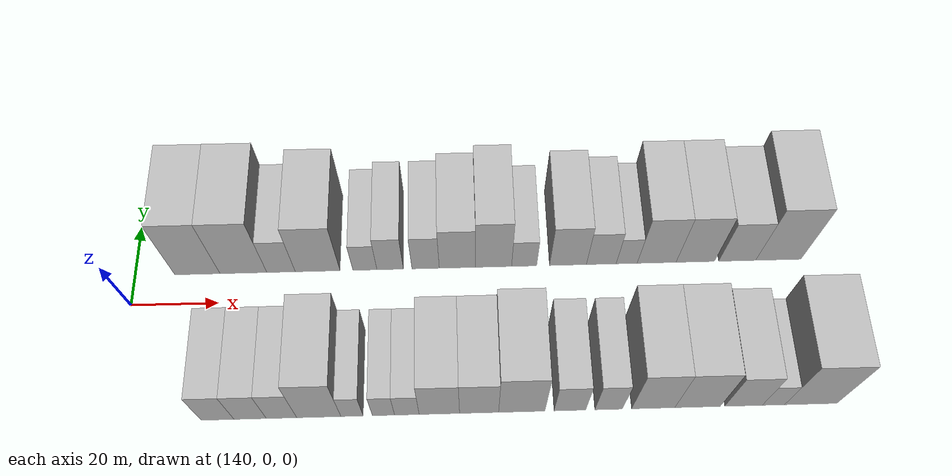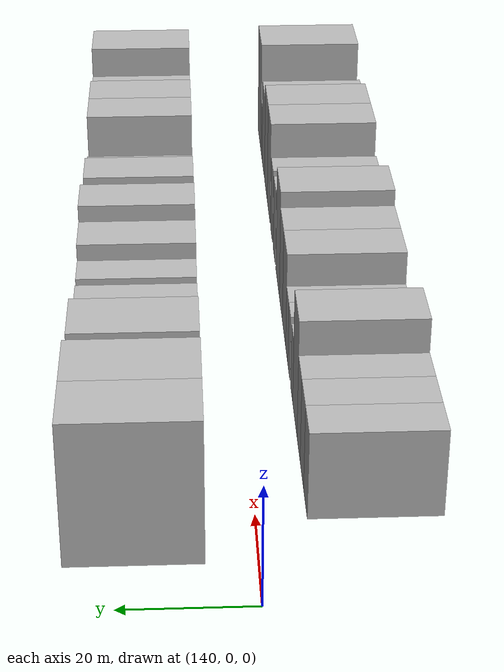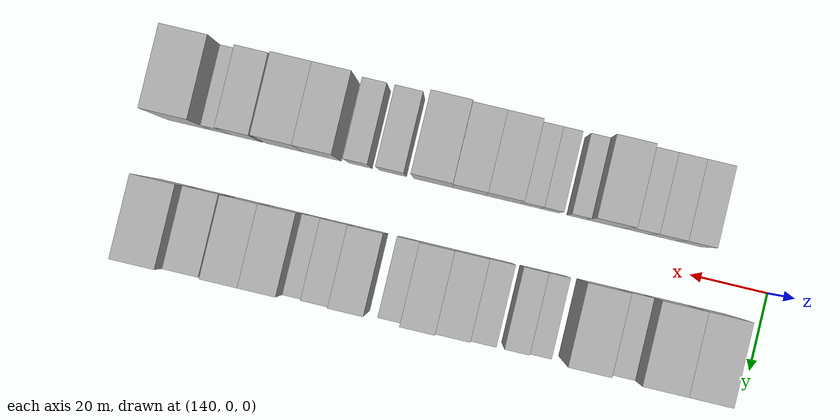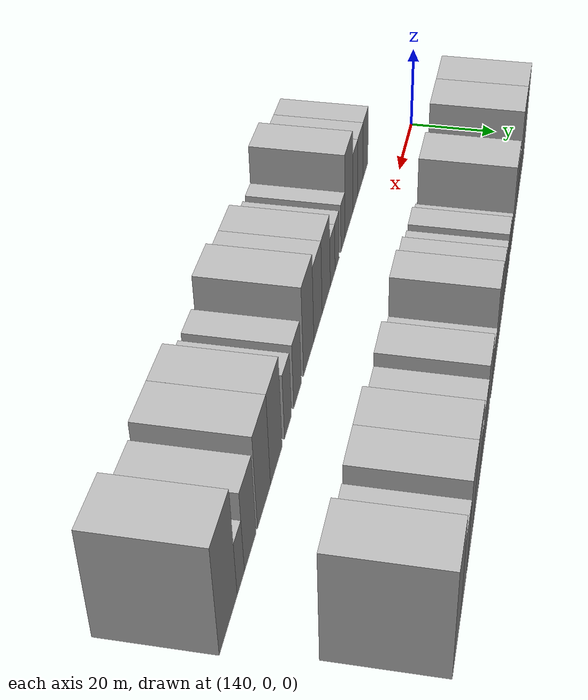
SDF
<sdf version="1.6">
 <world name="default">
  <model name="building_15">
   <static>1</static>
   <pose>154.4474 17.5000 0 0.000000 0.000000 1.570796</pose>
   <link name="link">
    <pose>0 0 12.00 0 0 0</pose>
    <collision name="collision"><geometry><box><size>20.0000 10.4894 24.0000</size></box></geometry></collision>
    <visual name="visual">
     <cast_shadows>0</cast_shadows>
     <geometry><box><size>20.0000 10.4894 24.0000</size></box></geometry>
     <material>
      <script>
       <uri>model://HANNAS_wall/materials/scripts</uri>
       <uri>model://HANNAS_wall/materials/textures</uri>
       <name>vrc/HANNAS_wall</name>
      </script>
     </material>
    </visual>
   </link>
  </model>
  <model name="building_16">
   <static>1</static>
   <pose>165.1244 17.5000 0 0.000000 0.000000 1.570796</pose>
   <link name="link">
    <pose>0 0 12.00 0 0 0</pose>
    <collision name="collision"><geometry><box><size>20.0000 10.8648 24.0000</size></box></geometry></collision>
    <visual name="visual">
     <cast_shadows>0</cast_shadows>
     <geometry><box><size>20.0000 10.8648 24.0000</size></box></geometry>
     <material>
      <script>
       <uri>model://HANNAS_wall/materials/scripts</uri>
       <uri>model://HANNAS_wall/materials/textures</uri>
       <name>vrc/HANNAS_wall</name>
      </script>
     </material>
    </visual>
   </link>
  </model>
  <model name="building_17">
   <static>1</static>
   <pose>173.8574 17.5000 0 0.000000 0.000000 1.570796</pose>
   <link name="link">
    <pose>0 0 7.50 0 0 0</pose>
    <collision name="collision"><geometry><box><size>20.0000 6.6013 15.0000</size></box></geometry></collision>
    <visual name="visual">
     <cast_shadows>0</cast_shadows>
     <geometry><box><size>20.0000 6.6013 15.0000</size></box></geometry>
     <material>
      <script>
       <uri>model://HANNAS_wall/materials/scripts</uri>
       <uri>model://HANNAS_wall/materials/textures</uri>
       <name>vrc/HANNAS_wall</name>
      </script>
     </material>
    </visual>
   </link>
  </model>
  <model name="building_18">
   <static>1</static>
   <pose>182.3586 17.5000 0 0.000000 0.000000 1.570796</pose>
   <link name="link">
    <pose>0 0 10.50 0 0 0</pose>
    <collision name="collision"><geometry><box><size>20.0000 10.4010 21.0000</size></box></geometry></collision>
    <visual name="visual">
     <cast_shadows>0</cast_shadows>
     <geometry><box><size>20.0000 10.4010 21.0000</size></box></geometry>
     <material>
      <script>
       <uri>model://HANNAS_wall/materials/scripts</uri>
       <uri>model://HANNAS_wall/materials/textures</uri>
       <name>vrc/HANNAS_wall</name>
      </script>
     </material>
    </visual>
   </link>
  </model>
  <model name="building_19">
   <static>1</static>
   <pose>193.3541 17.5000 0 0.000000 0.000000 1.570796</pose>
   <link name="link">
    <pose>0 0 6.00 0 0 0</pose>
    <collision name="collision"><geometry><box><size>20.0000 5.5900 12.0000</size></box></geometry></collision>
    <visual name="visual">
     <cast_shadows>0</cast_shadows>
     <geometry><box><size>20.0000 5.5900 12.0000</size></box></geometry>
     <material>
      <script>
       <uri>model://HANNAS_wall/materials/scripts</uri>
       <uri>model://HANNAS_wall/materials/textures</uri>
       <name>vrc/HANNAS_wall</name>
      </script>
     </material>
    </visual>
   </link>
  </model>
  <model name="building_20">
   <static>1</static>
   <pose>199.2261 17.5000 0 0.000000 0.000000 1.570796</pose>
   <link name="link">
    <pose>0 0 7.50 0 0 0</pose>
    <collision name="collision"><geometry><box><size>20.0000 6.1541 15.0000</size></box></geometry></collision>
    <visual name="visual">
     <cast_shadows>0</cast_shadows>
     <geometry><box><size>20.0000 6.1541 15.0000</size></box></geometry>
     <material>
      <script>
       <uri>model://HANNAS_wall/materials/scripts</uri>
       <uri>model://HANNAS_wall/materials/textures</uri>
       <name>vrc/HANNAS_wall</name>
      </script>
     </material>
    </visual>
   </link>
  </model>
  <model name="building_21">
   <static>1</static>
   <pose>207.4873 17.5000 0 0.000000 0.000000 1.570796</pose>
   <link name="link">
    <pose>0 0 7.50 0 0 0</pose>
    <collision name="collision"><geometry><box><size>20.0000 6.3683 15.0000</size></box></geometry></collision>
    <visual name="visual">
     <cast_shadows>0</cast_shadows>
     <geometry><box><size>20.0000 6.3683 15.0000</size></box></geometry>
     <material>
      <script>
       <uri>model://HANNAS_wall/materials/scripts</uri>
       <uri>model://HANNAS_wall/materials/textures</uri>
       <name>vrc/HANNAS_wall</name>
      </script>
     </material>
    </visual>
   </link>
  </model>
  <model name="building_22">
   <static>1</static>
   <pose>214.8845 17.5000 0 0.000000 0.000000 1.570796</pose>
   <link name="link">
    <pose>0 0 9.00 0 0 0</pose>
    <collision name="collision"><geometry><box><size>20.0000 8.4260 18.0000</size></box></geometry></collision>
    <visual name="visual">
     <cast_shadows>0</cast_shadows>
     <geometry><box><size>20.0000 8.4260 18.0000</size></box></geometry>
     <material>
      <script>
       <uri>model://HANNAS_wall/materials/scripts</uri>
       <uri>model://HANNAS_wall/materials/textures</uri>
       <name>vrc/HANNAS_wall</name>
      </script>
     </material>
    </visual>
   </link>
  </model>
  <model name="building_23">
   <static>1</static>
   <pose>223.3157 17.5000 0 0.000000 0.000000 1.570796</pose>
   <link name="link">
    <pose>0 0 10.50 0 0 0</pose>
    <collision name="collision"><geometry><box><size>20.0000 8.4365 21.0000</size></box></geometry></collision>
    <visual name="visual">
     <cast_shadows>0</cast_shadows>
     <geometry><box><size>20.0000 8.4365 21.0000</size></box></geometry>
     <material>
      <script>
       <uri>model://HANNAS_wall/materials/scripts</uri>
       <uri>model://HANNAS_wall/materials/textures</uri>
       <name>vrc/HANNAS_wall</name>
      </script>
     </material>
    </visual>
   </link>
  </model>
  <model name="building_24">
   <static>1</static>
   <pose>230.4687 17.5000 0 0.000000 0.000000 1.570796</pose>
   <link name="link">
    <pose>0 0 6.00 0 0 0</pose>
    <collision name="collision"><geometry><box><size>20.0000 5.8695 12.0000</size></box></geometry></collision>
    <visual name="visual">
     <cast_shadows>0</cast_shadows>
     <geometry><box><size>20.0000 5.8695 12.0000</size></box></geometry>
     <material>
      <script>
       <uri>model://HANNAS_wall/materials/scripts</uri>
       <uri>model://HANNAS_wall/materials/textures</uri>
       <name>vrc/HANNAS_wall</name>
      </script>
     </material>
    </visual>
   </link>
  </model>
  <model name="building_25">
   <static>1</static>
   <pose>240.7069 17.5000 0 0.000000 0.000000 1.570796</pose>
   <link name="link">
    <pose>0 0 9.00 0 0 0</pose>
    <collision name="collision"><geometry><box><size>20.0000 8.6068 18.0000</size></box></geometry></collision>
    <visual name="visual">
     <cast_shadows>0</cast_shadows>
     <geometry><box><size>20.0000 8.6068 18.0000</size></box></geometry>
     <material>
      <script>
       <uri>model://HANNAS_wall/materials/scripts</uri>
       <uri>model://HANNAS_wall/materials/textures</uri>
       <name>vrc/HANNAS_wall</name>
      </script>
     </material>
    </visual>
   </link>
  </model>
  <model name="building_26">
   <static>1</static>
   <pose>248.5009 17.5000 0 0.000000 0.000000 1.570796</pose>
   <link name="link">
    <pose>0 0 7.50 0 0 0</pose>
    <collision name="collision"><geometry><box><size>20.0000 6.9813 15.0000</size></box></geometry></collision>
    <visual name="visual">
     <cast_shadows>0</cast_shadows>
     <geometry><box><size>20.0000 6.9813 15.0000</size></box></geometry>
     <material>
      <script>
       <uri>model://HANNAS_wall/materials/scripts</uri>
       <uri>model://HANNAS_wall/materials/textures</uri>
       <name>vrc/HANNAS_wall</name>
      </script>
     </material>
    </visual>
   </link>
  </model>
  <model name="building_27">
   <static>1</static>
   <pose>254.4521 17.5000 0 0.000000 0.000000 1.570796</pose>
   <link name="link">
    <pose>0 0 6.00 0 0 0</pose>
    <collision name="collision"><geometry><box><size>20.0000 4.9211 12.0000</size></box></geometry></collision>
    <visual name="visual">
     <cast_shadows>0</cast_shadows>
     <geometry><box><size>20.0000 4.9211 12.0000</size></box></geometry>
     <material>
      <script>
       <uri>model://HANNAS_wall/materials/scripts</uri>
       <uri>model://HANNAS_wall/materials/textures</uri>
       <name>vrc/HANNAS_wall</name>
      </script>
     </material>
    </visual>
   </link>
  </model>
  <model name="building_28">
   <static>1</static>
   <pose>261.4727 17.5000 0 0.000000 0.000000 1.570796</pose>
   <link name="link">
    <pose>0 0 10.50 0 0 0</pose>
    <collision name="collision"><geometry><box><size>20.0000 9.1201 21.0000</size></box></geometry></collision>
    <visual name="visual">
     <cast_shadows>0</cast_shadows>
     <geometry><box><size>20.0000 9.1201 21.0000</size></box></geometry>
     <material>
      <script>
       <uri>model://HANNAS_wall/materials/scripts</uri>
       <uri>model://HANNAS_wall/materials/textures</uri>
       <name>vrc/HANNAS_wall</name>
      </script>
     </material>
    </visual>
   </link>
  </model>
  <model name="building_29">
   <static>1</static>
   <pose>270.5441 17.5000 0 0.000000 0.000000 1.570796</pose>
   <link name="link">
    <pose>0 0 10.50 0 0 0</pose>
    <collision name="collision"><geometry><box><size>20.0000 9.0228 21.0000</size></box></geometry></collision>
    <visual name="visual">
     <cast_shadows>0</cast_shadows>
     <geometry><box><size>20.0000 9.0228 21.0000</size></box></geometry>
     <material>
      <script>
       <uri>model://HANNAS_wall/materials/scripts</uri>
       <uri>model://HANNAS_wall/materials/textures</uri>
       <name>vrc/HANNAS_wall</name>
      </script>
     </material>
    </visual>
   </link>
  </model>
  <model name="building_30">
   <static>1</static>
   <pose>280.3954 17.5000 0 0.000000 0.000000 1.570796</pose>
   <link name="link">
    <pose>0 0 9.00 0 0 0</pose>
    <collision name="collision"><geometry><box><size>20.0000 8.6798 18.0000</size></box></geometry></collision>
    <visual name="visual">
     <cast_shadows>0</cast_shadows>
     <geometry><box><size>20.0000 8.6798 18.0000</size></box></geometry>
     <material>
      <script>
       <uri>model://HANNAS_wall/materials/scripts</uri>
       <uri>model://HANNAS_wall/materials/textures</uri>
       <name>vrc/HANNAS_wall</name>
      </script>
     </material>
    </visual>
   </link>
  </model>
  <model name="building_31">
   <static>1</static>
   <pose>290.0700 17.5000 0 0.000000 0.000000 1.570796</pose>
   <link name="link">
    <pose>0 0 12.00 0 0 0</pose>
    <collision name="collision"><geometry><box><size>20.0000 10.6693 24.0000</size></box></geometry></collision>
    <visual name="visual">
     <cast_shadows>0</cast_shadows>
     <geometry><box><size>20.0000 10.6693 24.0000</size></box></geometry>
     <material>
      <script>
       <uri>model://HANNAS_wall/materials/scripts</uri>
       <uri>model://HANNAS_wall/materials/textures</uri>
       <name>vrc/HANNAS_wall</name>
      </script>
     </material>
    </visual>
   </link>
  </model>
  <model name="building_50">
   <static>1</static>
   <pose>162.2317 -17.5000 0 0.000000 0.000000 1.570796</pose>
   <link name="link">
    <pose>0 0 7.50 0 0 0</pose>
    <collision name="collision"><geometry><box><size>20.0000 7.1058 15.0000</size></box></geometry></collision>
    <visual name="visual">
     <cast_shadows>0</cast_shadows>
     <geometry><box><size>20.0000 7.1058 15.0000</size></box></geometry>
     <material>
      <script>
       <uri>model://HANNAS_wall/materials/scripts</uri>
       <uri>model://HANNAS_wall/materials/textures</uri>
       <name>vrc/HANNAS_wall</name>
      </script>
     </material>
    </visual>
   </link>
  </model>
  <model name="building_51">
   <static>1</static>
   <pose>169.2778 -17.5000 0 0.000000 0.000000 1.570796</pose>
   <link name="link">
    <pose>0 0 7.50 0 0 0</pose>
    <collision name="collision"><geometry><box><size>20.0000 6.9863 15.0000</size></box></geometry></collision>
    <visual name="visual">
     <cast_shadows>0</cast_shadows>
     <geometry><box><size>20.0000 6.9863 15.0000</size></box></geometry>
     <material>
      <script>
       <uri>model://HANNAS_wall/materials/scripts</uri>
       <uri>model://HANNAS_wall/materials/textures</uri>
       <name>vrc/HANNAS_wall</name>
      </script>
     </material>
    </visual>
   </link>
  </model>
  <model name="building_52">
   <static>1</static>
   <pose>176.0618 -17.5000 0 0.000000 0.000000 1.570796</pose>
   <link name="link">
    <pose>0 0 7.50 0 0 0</pose>
    <collision name="collision"><geometry><box><size>20.0000 6.5817 15.0000</size></box></geometry></collision>
    <visual name="visual">
     <cast_shadows>0</cast_shadows>
     <geometry><box><size>20.0000 6.5817 15.0000</size></box></geometry>
     <material>
      <script>
       <uri>model://HANNAS_wall/materials/scripts</uri>
       <uri>model://HANNAS_wall/materials/textures</uri>
       <name>vrc/HANNAS_wall</name>
      </script>
     </material>
    </visual>
   </link>
  </model>
  <model name="building_53">
   <static>1</static>
   <pose>184.1366 -17.5000 0 0.000000 0.000000 1.570796</pose>
   <link name="link">
    <pose>0 0 10.50 0 0 0</pose>
    <collision name="collision"><geometry><box><size>20.0000 9.5681 21.0000</size></box></geometry></collision>
    <visual name="visual">
     <cast_shadows>0</cast_shadows>
     <geometry><box><size>20.0000 9.5681 21.0000</size></box></geometry>
     <material>
      <script>
       <uri>model://HANNAS_wall/materials/scripts</uri>
       <uri>model://HANNAS_wall/materials/textures</uri>
       <name>vrc/HANNAS_wall</name>
      </script>
     </material>
    </visual>
   </link>
  </model>
  <model name="building_54">
   <static>1</static>
   <pose>191.3354 -17.5000 0 0.000000 0.000000 1.570796</pose>
   <link name="link">
    <pose>0 0 6.00 0 0 0</pose>
    <collision name="collision"><geometry><box><size>20.0000 4.8296 12.0000</size></box></geometry></collision>
    <visual name="visual">
     <cast_shadows>0</cast_shadows>
     <geometry><box><size>20.0000 4.8296 12.0000</size></box></geometry>
     <material>
      <script>
       <uri>model://HANNAS_wall/materials/scripts</uri>
       <uri>model://HANNAS_wall/materials/textures</uri>
       <name>vrc/HANNAS_wall</name>
      </script>
     </material>
    </visual>
   </link>
  </model>
  <model name="building_55">
   <static>1</static>
   <pose>198.1550 -17.5000 0 0.000000 0.000000 1.570796</pose>
   <link name="link">
    <pose>0 0 6.00 0 0 0</pose>
    <collision name="collision"><geometry><box><size>20.0000 4.8096 12.0000</size></box></geometry></collision>
    <visual name="visual">
     <cast_shadows>0</cast_shadows>
     <geometry><box><size>20.0000 4.8096 12.0000</size></box></geometry>
     <material>
      <script>
       <uri>model://HANNAS_wall/materials/scripts</uri>
       <uri>model://HANNAS_wall/materials/textures</uri>
       <name>vrc/HANNAS_wall</name>
      </script>
     </material>
    </visual>
   </link>
  </model>
  <model name="building_56">
   <static>1</static>
   <pose>203.2255 -17.5000 0 0.000000 0.000000 1.570796</pose>
   <link name="link">
    <pose>0 0 6.00 0 0 0</pose>
    <collision name="collision"><geometry><box><size>20.0000 5.3314 12.0000</size></box></geometry></collision>
    <visual name="visual">
     <cast_shadows>0</cast_shadows>
     <geometry><box><size>20.0000 5.3314 12.0000</size></box></geometry>
     <material>
      <script>
       <uri>model://HANNAS_wall/materials/scripts</uri>
       <uri>model://HANNAS_wall/materials/textures</uri>
       <name>vrc/HANNAS_wall</name>
      </script>
     </material>
    </visual>
   </link>
  </model>
  <model name="building_57">
   <static>1</static>
   <pose>210.2782 -17.5000 0 0.000000 0.000000 1.570796</pose>
   <link name="link">
    <pose>0 0 9.00 0 0 0</pose>
    <collision name="collision"><geometry><box><size>20.0000 8.7739 18.0000</size></box></geometry></collision>
    <visual name="visual">
     <cast_shadows>0</cast_shadows>
     <geometry><box><size>20.0000 8.7739 18.0000</size></box></geometry>
     <material>
      <script>
       <uri>model://HANNAS_wall/materials/scripts</uri>
       <uri>model://HANNAS_wall/materials/textures</uri>
       <name>vrc/HANNAS_wall</name>
      </script>
     </material>
    </visual>
   </link>
  </model>
  <model name="building_58">
   <static>1</static>
   <pose>218.9096 -17.5000 0 0.000000 0.000000 1.570796</pose>
   <link name="link">
    <pose>0 0 9.00 0 0 0</pose>
    <collision name="collision"><geometry><box><size>20.0000 8.4890 18.0000</size></box></geometry></collision>
    <visual name="visual">
     <cast_shadows>0</cast_shadows>
     <geometry><box><size>20.0000 8.4890 18.0000</size></box></geometry>
     <material>
      <script>
       <uri>model://HANNAS_wall/materials/scripts</uri>
       <uri>model://HANNAS_wall/materials/textures</uri>
       <name>vrc/HANNAS_wall</name>
      </script>
     </material>
    </visual>
   </link>
  </model>
  <model name="building_59">
   <static>1</static>
   <pose>228.1940 -17.5000 0 0.000000 0.000000 1.570796</pose>
   <link name="link">
    <pose>0 0 10.50 0 0 0</pose>
    <collision name="collision"><geometry><box><size>20.0000 10.0798 21.0000</size></box></geometry></collision>
    <visual name="visual">
     <cast_shadows>0</cast_shadows>
     <geometry><box><size>20.0000 10.0798 21.0000</size></box></geometry>
     <material>
      <script>
       <uri>model://HANNAS_wall/materials/scripts</uri>
       <uri>model://HANNAS_wall/materials/textures</uri>
       <name>vrc/HANNAS_wall</name>
      </script>
     </material>
    </visual>
   </link>
  </model>
  <model name="building_60">
   <static>1</static>
   <pose>238.6845 -17.5000 0 0.000000 0.000000 1.570796</pose>
   <link name="link">
    <pose>0 0 7.50 0 0 0</pose>
    <collision name="collision"><geometry><box><size>20.0000 6.9010 15.0000</size></box></geometry></collision>
    <visual name="visual">
     <cast_shadows>0</cast_shadows>
     <geometry><box><size>20.0000 6.9010 15.0000</size></box></geometry>
     <material>
      <script>
       <uri>model://HANNAS_wall/materials/scripts</uri>
       <uri>model://HANNAS_wall/materials/textures</uri>
       <name>vrc/HANNAS_wall</name>
      </script>
     </material>
    </visual>
   </link>
  </model>
  <model name="building_61">
   <static>1</static>
   <pose>247.1431 -17.5000 0 0.000000 0.000000 1.570796</pose>
   <link name="link">
    <pose>0 0 7.50 0 0 0</pose>
    <collision name="collision"><geometry><box><size>20.0000 6.0163 15.0000</size></box></geometry></collision>
    <visual name="visual">
     <cast_shadows>0</cast_shadows>
     <geometry><box><size>20.0000 6.0163 15.0000</size></box></geometry>
     <material>
      <script>
       <uri>model://HANNAS_wall/materials/scripts</uri>
       <uri>model://HANNAS_wall/materials/textures</uri>
       <name>vrc/HANNAS_wall</name>
      </script>
     </material>
    </visual>
   </link>
  </model>
  <model name="building_62">
   <static>1</static>
   <pose>256.8787 -17.5000 0 0.000000 0.000000 1.570796</pose>
   <link name="link">
    <pose>0 0 10.50 0 0 0</pose>
    <collision name="collision"><geometry><box><size>20.0000 9.4549 21.0000</size></box></geometry></collision>
    <visual name="visual">
     <cast_shadows>0</cast_shadows>
     <geometry><box><size>20.0000 9.4549 21.0000</size></box></geometry>
     <material>
      <script>
       <uri>model://HANNAS_wall/materials/scripts</uri>
       <uri>model://HANNAS_wall/materials/textures</uri>
       <name>vrc/HANNAS_wall</name>
      </script>
     </material>
    </visual>
   </link>
  </model>
  <model name="building_63">
   <static>1</static>
   <pose>266.5739 -17.5000 0 0.000000 0.000000 1.570796</pose>
   <link name="link">
    <pose>0 0 10.50 0 0 0</pose>
    <collision name="collision"><geometry><box><size>20.0000 9.9354 21.0000</size></box></geometry></collision>
    <visual name="visual">
     <cast_shadows>0</cast_shadows>
     <geometry><box><size>20.0000 9.9354 21.0000</size></box></geometry>
     <material>
      <script>
       <uri>model://HANNAS_wall/materials/scripts</uri>
       <uri>model://HANNAS_wall/materials/textures</uri>
       <name>vrc/HANNAS_wall</name>
      </script>
     </material>
    </visual>
   </link>
  </model>
  <model name="building_64">
   <static>1</static>
   <pose>276.6525 -17.5000 0 0.000000 0.000000 1.570796</pose>
   <link name="link">
    <pose>0 0 9.00 0 0 0</pose>
    <collision name="collision"><geometry><box><size>20.0000 8.2217 18.0000</size></box></geometry></collision>
    <visual name="visual">
     <cast_shadows>0</cast_shadows>
     <geometry><box><size>20.0000 8.2217 18.0000</size></box></geometry>
     <material>
      <script>
       <uri>model://HANNAS_wall/materials/scripts</uri>
       <uri>model://HANNAS_wall/materials/textures</uri>
       <name>vrc/HANNAS_wall</name>
      </script>
     </material>
    </visual>
   </link>
  </model>
  <model name="building_65">
   <static>1</static>
   <pose>283.2062 -17.5000 0 0.000000 0.000000 1.570796</pose>
   <link name="link">
    <pose>0 0 6.00 0 0 0</pose>
    <collision name="collision"><geometry><box><size>20.0000 4.8857 12.0000</size></box></geometry></collision>
    <visual name="visual">
     <cast_shadows>0</cast_shadows>
     <geometry><box><size>20.0000 4.8857 12.0000</size></box></geometry>
     <material>
      <script>
       <uri>model://HANNAS_wall/materials/scripts</uri>
       <uri>model://HANNAS_wall/materials/textures</uri>
       <name>vrc/HANNAS_wall</name>
      </script>
     </material>
    </visual>
   </link>
  </model>
  <model name="building_66">
   <static>1</static>
   <pose>291.3941 -17.5000 0 0.000000 0.000000 1.570796</pose>
   <link name="link">
    <pose>0 0 12.00 0 0 0</pose>
    <collision name="collision"><geometry><box><size>20.0000 11.4902 24.0000</size></box></geometry></collision>
    <visual name="visual">
     <cast_shadows>0</cast_shadows>
     <geometry><box><size>20.0000 11.4902 24.0000</size></box></geometry>
     <material>
      <script>
       <uri>model://HANNAS_wall/materials/scripts</uri>
       <uri>model://HANNAS_wall/materials/textures</uri>
       <name>vrc/HANNAS_wall</name>
      </script>
     </material>
    </visual>
   </link>
  </model>
 </world>
</sdf>
